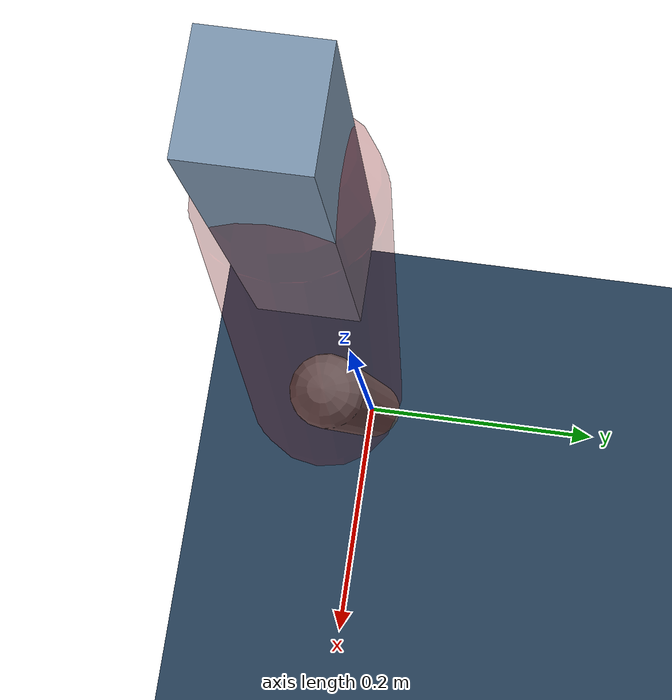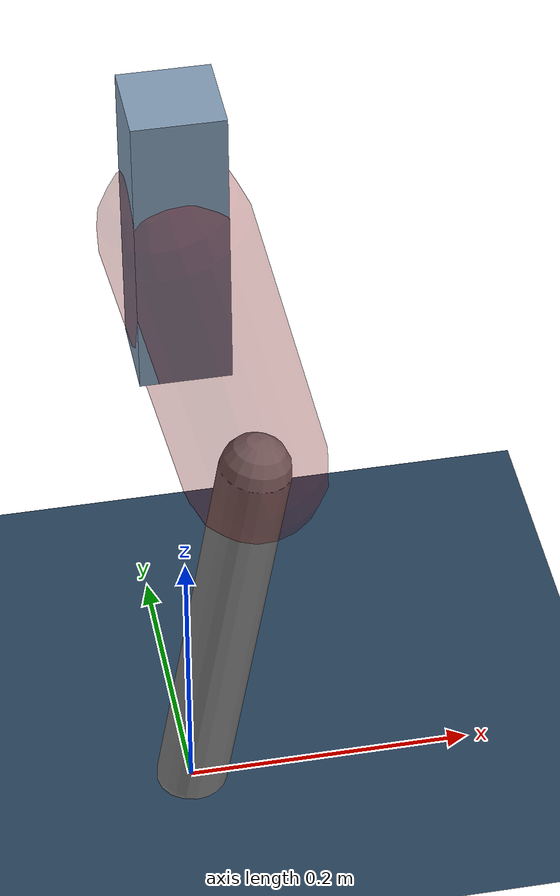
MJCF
<mujoco model="Hopper2D">
	<compiler inertiafromgeom="true" angle="radian" />
	<option timestep="0.001" integrator="implicit" cone="elliptic" solver="Newton" tolerance="1e-10" />

	<default>
		<geom contype="1" conaffinity="1" condim="3" friction="2 0.005 0.0001" solref="0.005 1" />
		<joint limited="true" damping="0.1" />
	</default>

	<asset>
		<texture name="skybox" type="skybox" builtin="gradient" rgb1=".4 .6 .8" rgb2="0 0 0" width="800" height="800" />
		<texture name="grid" type="2d" builtin="checker" rgb1=".1 .2 .3" rgb2=".2 .3 .4" width="300" height="300" mark="edge" markrgb=".2 .3 .4" />
		<material name="ground" texture="grid" texrepeat="1 1" texuniform="true" reflectance="0.1" />
		<material name="leg" rgba="0.5 0.6 0.7 1" />
	</asset>

	<worldbody>

		<geom name="floor" type="plane" size="5 5 0.25" material="ground" />

		<light directional="false" diffuse="0.8 0.8 0.8" specular="0.3 0.3 0.3" pos="0 0 2" dir="0 0 -1" />
		<light mode="targetbodycom" target="base" directional="false" diffuse="0.8 0.8 0.8" specular="0.3 0.3 0.3" pos="0 0 2" dir="0 0 -1" />

		<camera name="fixed" pos="0 -2 1" xyaxes="1 0 0 0 0 1" />
		<camera name="tracking" mode="trackcom" pos="0 -3 1" />

		<body name="root" pos="0 0 0.48768112077646136">
			<joint name="slide_x" type="slide" axis="1 0 0" range="-100 100" />
			<joint name="slide_z" type="slide" axis="0 0 1" range="0 10" />

			<body name="base" pos="0 0 0">
				<geom name="torso" type="box" size="0.03 0.03 0.1" mass="2.635" material="leg" />

				<body name="link1" pos="0 0 0" euler="0 1.339647784187691 0">
					<joint type="hinge" axis="0 -1 0" pos="0 0 0" name="hinge1" limited="true" range="-3.14 3.14" stiffness="0" damping="0.1" />
					<geom name="thigh" type="capsule" fromto="0 0 0 0.2144851179345892 0 0" size="0.05" rgba="0.5 0 0 0.3" mass="0.7658127948364729" />

					<body name="link2" pos="0.2144851179345892 0 0" euler="0 0.40554214054358123 0">
						<joint type="hinge" axis="0 -1 0" pos="0 0 0" name="hinge2" limited="true" range="-3.14 3.14" stiffness="0" damping="0.1" />
						<geom name="shank" type="capsule" fromto="0 0 0 0.2831960028418722 0 0" size="0.025" mass="0.46975680227349775" />

					</body>
				</body>
			</body>
		</body>
	</worldbody>

	<actuator>
		<motor name="torque1" joint="hinge1" ctrlrange="-91.92777418508906 91.92777418508906" ctrllimited="true" gear="1" />
		<motor name="torque2" joint="hinge2" ctrlrange="-42.78478811832397 42.78478811832397" ctrllimited="true" gear="1" />
	</actuator>
</mujoco>
